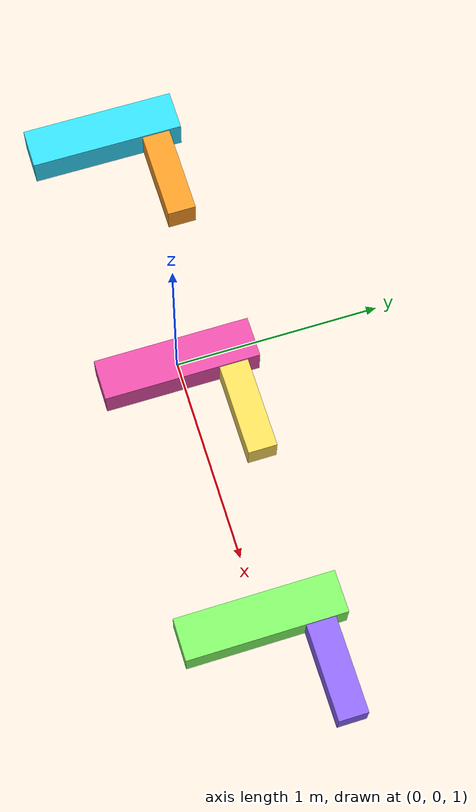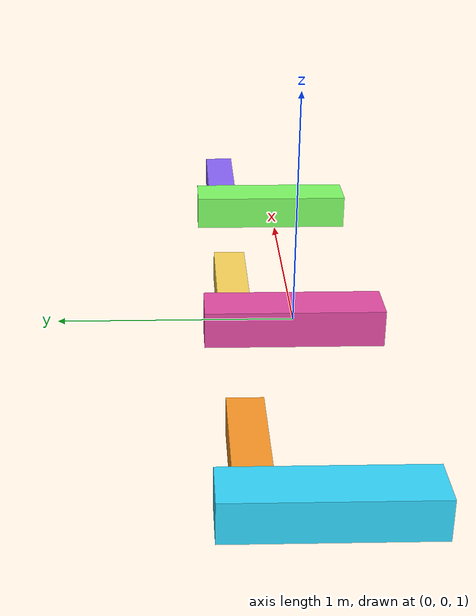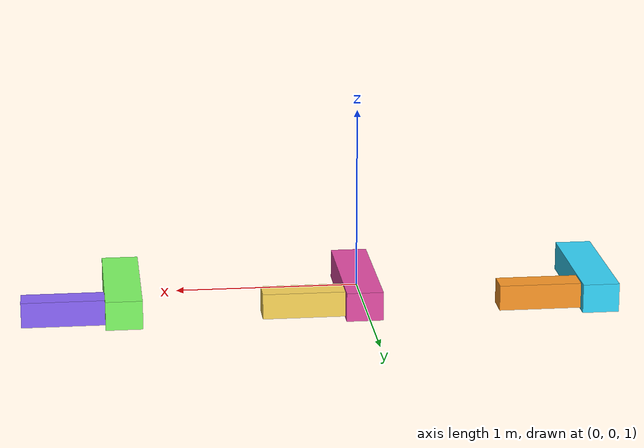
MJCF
<mujoco model="Intermediate-axis toy laboratory">
  <option integrator="RK4" timestep=".002" gravity="0 0 0"><flag contact="disable"/></option>
  <visual><global offwidth="1200" offheight="600"/><headlight ambient=".5 .5 .5" diffuse=".7 .7 .7"/><rgba haze=".015 .025 .05 1"/></visual>
  <worldbody>
    <light pos="0 -3 5" diffuse=".8 .8 .8"/>
    <body pos="-1.3 0 1"><freejoint/><geom type="box" size=".10 .38 .08" rgba=".2 .85 1 1" mass="1"/><geom type="box" pos=".25 .25 0" size=".3 .07 .07" mass=".4" rgba="1 .6 .15 1"/></body>
    <body pos="0 0 1"><freejoint/><geom type="box" size=".10 .38 .08" rgba=".9 .3 .65 1" mass="1"/><geom type="box" pos=".25 .25 0" size=".3 .07 .07" mass=".4" rgba="1 .85 .35 1"/></body>
    <body pos="1.3 0 1"><freejoint/><geom type="box" size=".10 .38 .08" rgba=".5 1 .4 1" mass="1"/><geom type="box" pos=".25 .25 0" size=".3 .07 .07" mass=".4" rgba=".55 .4 1 1"/></body>
  </worldbody>
</mujoco>
